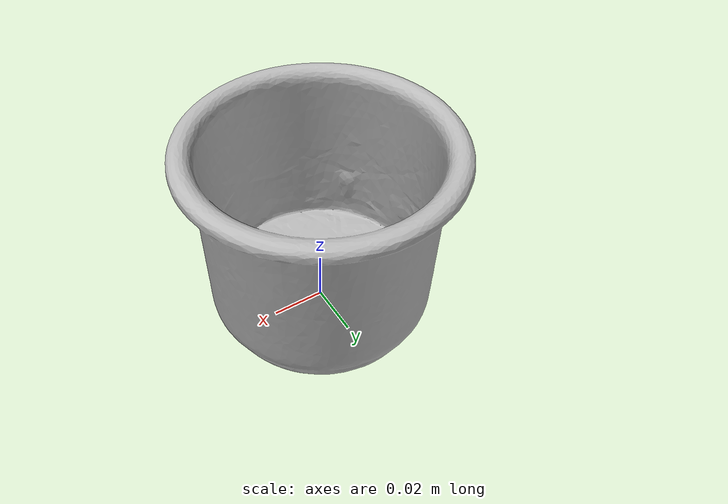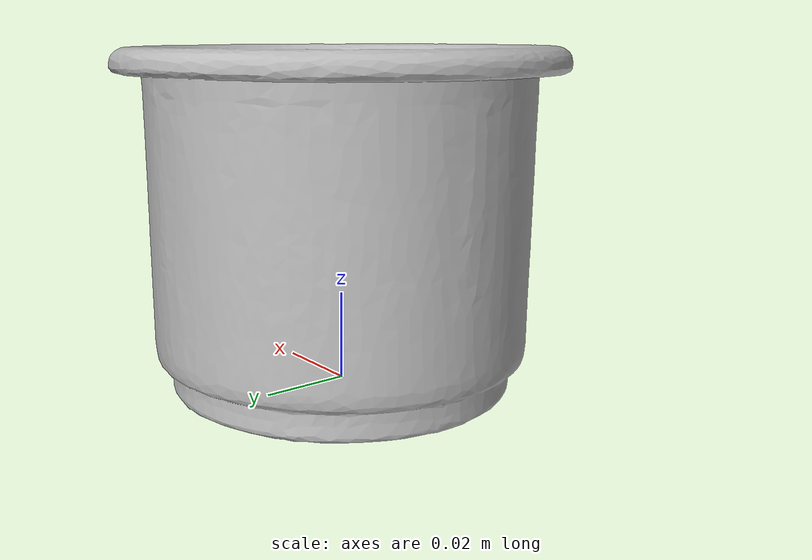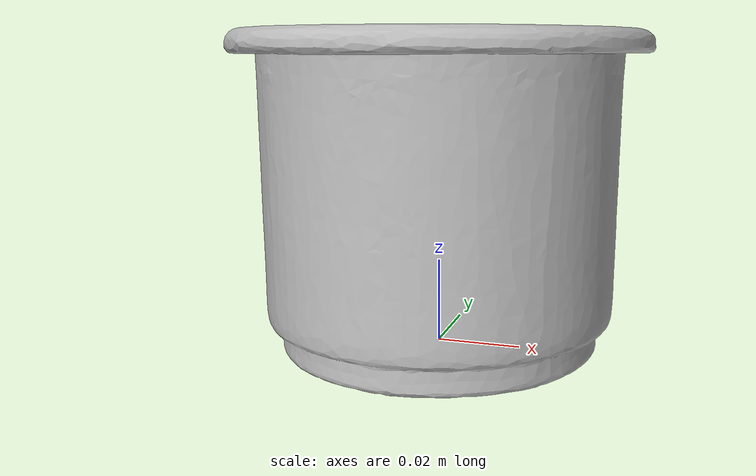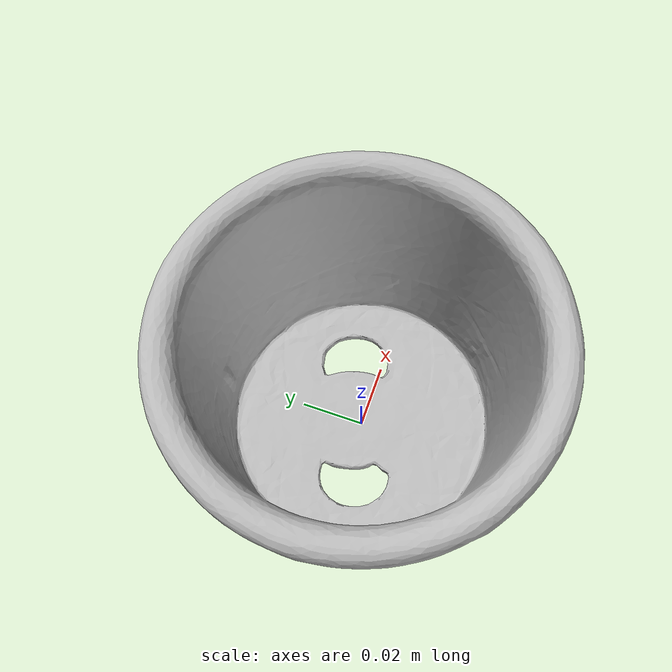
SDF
<?xml version="1.0" ?>
<sdf version='1.8'>
  <model name='ycb_065-i_cups'>
    <link name='body'>
      <inertial>
        <mass>0.014</mass>
        <pose>0.000377030975 0.000450431516 0.0371605737 0 0 0</pose>
        <inertia>
          <ixx>1.95291473479e-05</ixx>
          <ixy>-2.89719595463e-08</ixy>
          <ixz>4.49116694016e-09</ixz>
          <iyy>1.94695455225e-05</iyy>
          <iyz>1.7509935981e-08</iyz>
          <izz>2.19821240132e-05</izz>
        </inertia>
      </inertial>
      <visual name='ycb_065-i_cups_visual'>
        <pose>0.011359 -0.001853 0.000463 0 0 0</pose>
        <geometry>
          <mesh>
            <uri>model://ycb_065-i_cups/meshes/textured.dae</uri>
          </mesh>
        </geometry>
      </visual>
      <collision name='ycb_065-i_cups_collision'>
        <pose>0.011359 -0.001853 0.000463 0 0 0</pose>
        <geometry>
          <mesh>
            <uri>model://ycb_065-i_cups/meshes/nontextured.stl</uri>
          </mesh>
        </geometry>
        <max_contacts>10</max_contacts>
        <surface>
          <contact>
            <ode>
              <kp>1e15</kp>
              <kd>1e13</kd>
            </ode>
          </contact>
        </surface>
      </collision>
    </link>
  </model>
</sdf>
